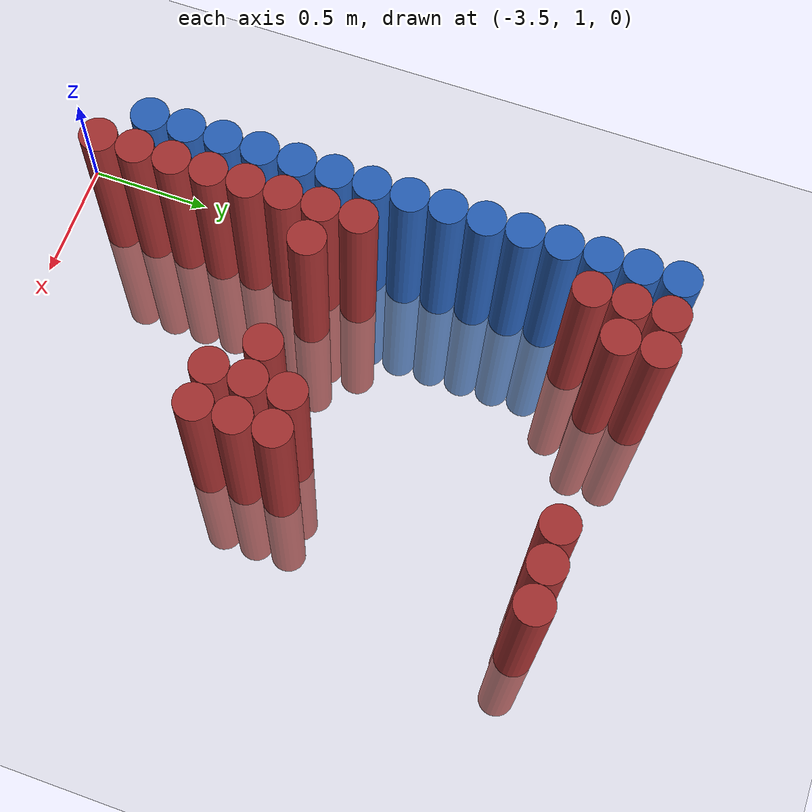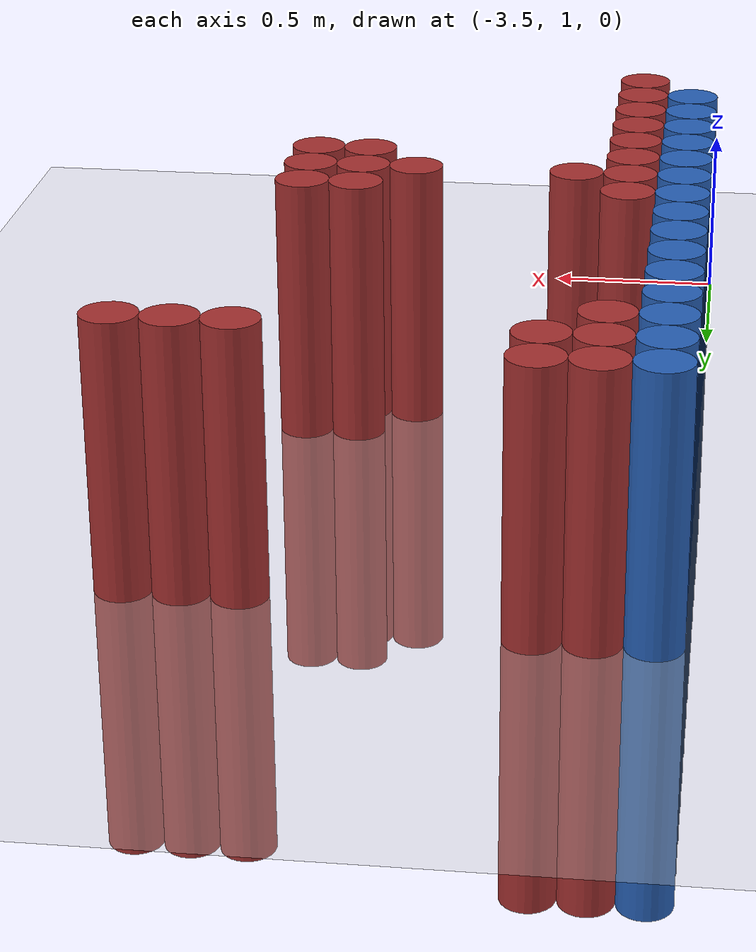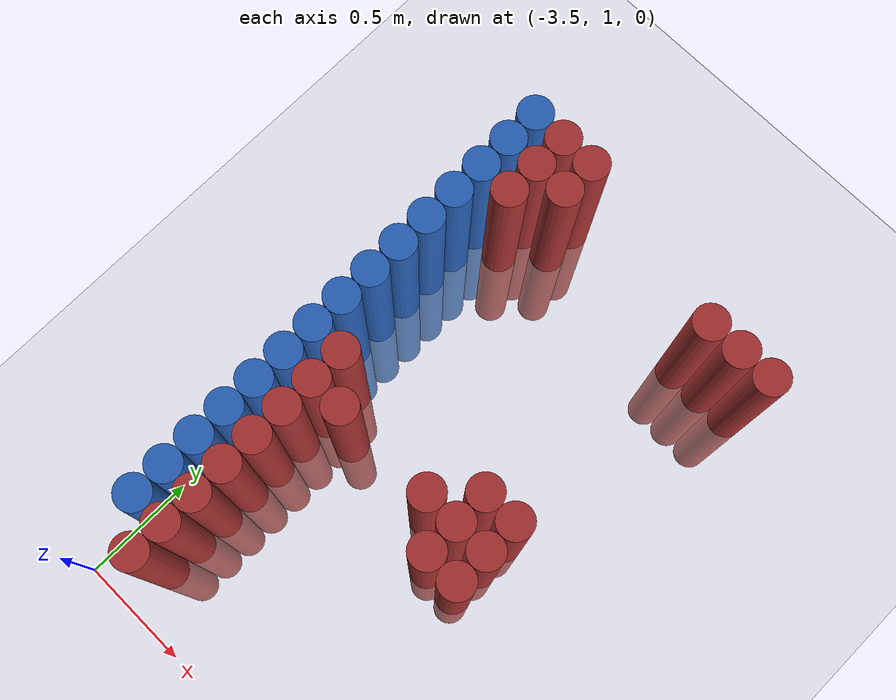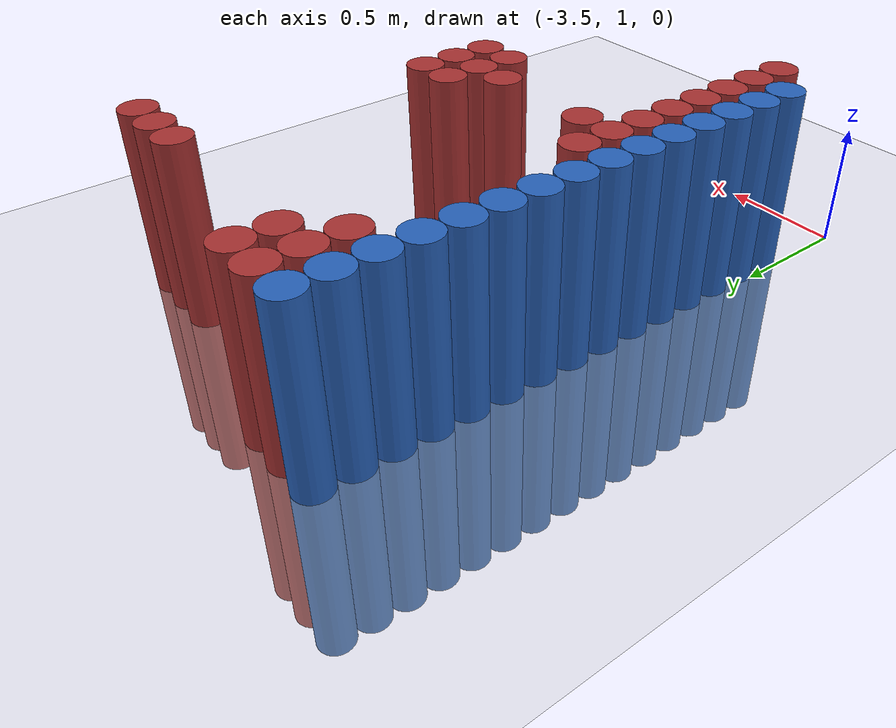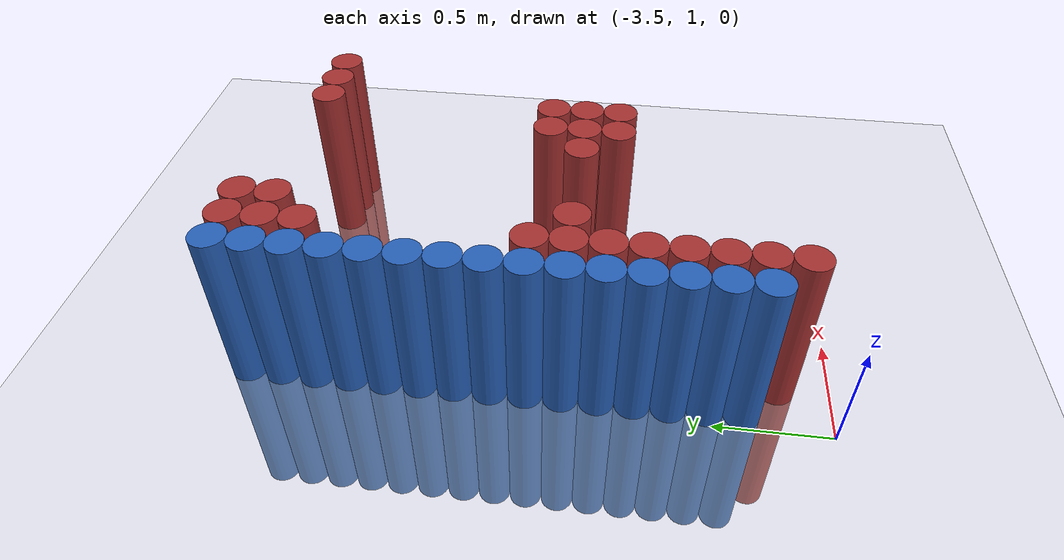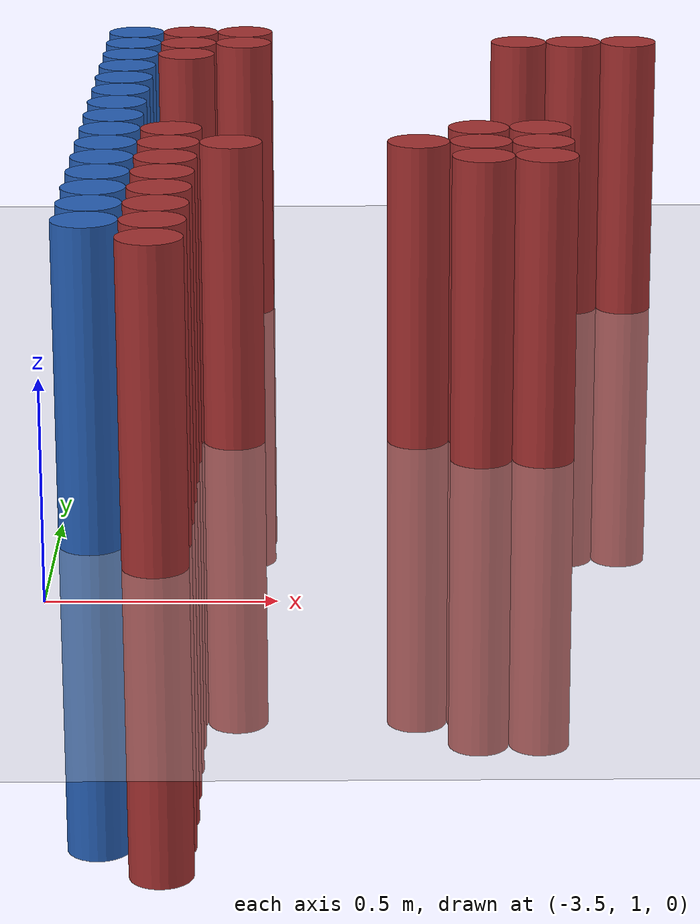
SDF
<sdf version="1.6">
 <world name="default">
  <model name="ground_plane">
   <static>1</static>
   <link name="link">
    <collision name="collision">
     <geometry><plane><normal>0 0 1</normal><size>100 100</size></plane></geometry>
     <surface><friction><ode><mu>100</mu><mu2>50</mu2></ode></friction></surface>
    </collision>
    <visual name="visual">
     <cast_shadows>0</cast_shadows>
     <geometry><plane><normal>0 0 1</normal><size>100 100</size></plane></geometry>
     <material>
      <script><uri>file://media/materials/scripts/gazebo.material</uri><name>Gazebo/Grey</name></script>
     </material>
    </visual>
   </link>
  </model>
  <model name="unit_cylinder_133">
   <static>1</static>
   <pose>-3.425000 1.375000 0.000000 0.000000 0.000000 0.000000</pose>
   <link name="link">
    <inertial>
     <mass>1</mass>
     <inertia><ixx>0.145833</ixx><ixy>0</ixy><ixz>0</ixz><iyy>0.145833</iyy><iyz>0</iyz><izz>0.125</izz></inertia>
    </inertial>
    <collision name="collision">
     <geometry><cylinder><radius>0.075000</radius><length>1.5</length></cylinder></geometry>
    </collision>
    <visual name="visual">
     <geometry><cylinder><radius>0.075000</radius><length>1.5</length></cylinder></geometry>
     <material>
      <ambient>0.152000 0.379000 0.720000 1</ambient>
      <diffuse>0.152000 0.379000 0.720000 1</diffuse>
     </material>
     <material>
      <script><name>Gazebo/Grey</name><uri>file://media/materials/scripts/gazebo.material</uri></script>
     </material>
    </visual>
   </link>
  </model>
  <model name="unit_cylinder_135">
   <static>1</static>
   <pose>-3.425000 1.525000 0.000000 0.000000 0.000000 0.000000</pose>
   <link name="link">
    <inertial>
     <mass>1</mass>
     <inertia><ixx>0.145833</ixx><ixy>0</ixy><ixz>0</ixz><iyy>0.145833</iyy><iyz>0</iyz><izz>0.125</izz></inertia>
    </inertial>
    <collision name="collision">
     <geometry><cylinder><radius>0.075000</radius><length>1.5</length></cylinder></geometry>
    </collision>
    <visual name="visual">
     <geometry><cylinder><radius>0.075000</radius><length>1.5</length></cylinder></geometry>
     <material>
      <ambient>0.152000 0.379000 0.720000 1</ambient>
      <diffuse>0.152000 0.379000 0.720000 1</diffuse>
     </material>
     <material>
      <script><name>Gazebo/Grey</name><uri>file://media/materials/scripts/gazebo.material</uri></script>
     </material>
    </visual>
   </link>
  </model>
  <model name="unit_cylinder_137">
   <static>1</static>
   <pose>-3.425000 1.675000 0.000000 0.000000 0.000000 0.000000</pose>
   <link name="link">
    <inertial>
     <mass>1</mass>
     <inertia><ixx>0.145833</ixx><ixy>0</ixy><ixz>0</ixz><iyy>0.145833</iyy><iyz>0</iyz><izz>0.125</izz></inertia>
    </inertial>
    <collision name="collision">
     <geometry><cylinder><radius>0.075000</radius><length>1.5</length></cylinder></geometry>
    </collision>
    <visual name="visual">
     <geometry><cylinder><radius>0.075000</radius><length>1.5</length></cylinder></geometry>
     <material>
      <ambient>0.152000 0.379000 0.720000 1</ambient>
      <diffuse>0.152000 0.379000 0.720000 1</diffuse>
     </material>
     <material>
      <script><name>Gazebo/Grey</name><uri>file://media/materials/scripts/gazebo.material</uri></script>
     </material>
    </visual>
   </link>
  </model>
  <model name="unit_cylinder_139">
   <static>1</static>
   <pose>-3.425000 1.825000 0.000000 0.000000 0.000000 0.000000</pose>
   <link name="link">
    <inertial>
     <mass>1</mass>
     <inertia><ixx>0.145833</ixx><ixy>0</ixy><ixz>0</ixz><iyy>0.145833</iyy><iyz>0</iyz><izz>0.125</izz></inertia>
    </inertial>
    <collision name="collision">
     <geometry><cylinder><radius>0.075000</radius><length>1.5</length></cylinder></geometry>
    </collision>
    <visual name="visual">
     <geometry><cylinder><radius>0.075000</radius><length>1.5</length></cylinder></geometry>
     <material>
      <ambient>0.152000 0.379000 0.720000 1</ambient>
      <diffuse>0.152000 0.379000 0.720000 1</diffuse>
     </material>
     <material>
      <script><name>Gazebo/Grey</name><uri>file://media/materials/scripts/gazebo.material</uri></script>
     </material>
    </visual>
   </link>
  </model>
  <model name="unit_cylinder_141">
   <static>1</static>
   <pose>-3.425000 1.975000 0.000000 0.000000 0.000000 0.000000</pose>
   <link name="link">
    <inertial>
     <mass>1</mass>
     <inertia><ixx>0.145833</ixx><ixy>0</ixy><ixz>0</ixz><iyy>0.145833</iyy><iyz>0</iyz><izz>0.125</izz></inertia>
    </inertial>
    <collision name="collision">
     <geometry><cylinder><radius>0.075000</radius><length>1.5</length></cylinder></geometry>
    </collision>
    <visual name="visual">
     <geometry><cylinder><radius>0.075000</radius><length>1.5</length></cylinder></geometry>
     <material>
      <ambient>0.152000 0.379000 0.720000 1</ambient>
      <diffuse>0.152000 0.379000 0.720000 1</diffuse>
     </material>
     <material>
      <script><name>Gazebo/Grey</name><uri>file://media/materials/scripts/gazebo.material</uri></script>
     </material>
    </visual>
   </link>
  </model>
  <model name="unit_cylinder_143">
   <static>1</static>
   <pose>-3.425000 2.125000 0.000000 0.000000 0.000000 0.000000</pose>
   <link name="link">
    <inertial>
     <mass>1</mass>
     <inertia><ixx>0.145833</ixx><ixy>0</ixy><ixz>0</ixz><iyy>0.145833</iyy><iyz>0</iyz><izz>0.125</izz></inertia>
    </inertial>
    <collision name="collision">
     <geometry><cylinder><radius>0.075000</radius><length>1.5</length></cylinder></geometry>
    </collision>
    <visual name="visual">
     <geometry><cylinder><radius>0.075000</radius><length>1.5</length></cylinder></geometry>
     <material>
      <ambient>0.152000 0.379000 0.720000 1</ambient>
      <diffuse>0.152000 0.379000 0.720000 1</diffuse>
     </material>
     <material>
      <script><name>Gazebo/Grey</name><uri>file://media/materials/scripts/gazebo.material</uri></script>
     </material>
    </visual>
   </link>
  </model>
  <model name="unit_cylinder_145">
   <static>1</static>
   <pose>-3.425000 2.275000 0.000000 0.000000 0.000000 0.000000</pose>
   <link name="link">
    <inertial>
     <mass>1</mass>
     <inertia><ixx>0.145833</ixx><ixy>0</ixy><ixz>0</ixz><iyy>0.145833</iyy><iyz>0</iyz><izz>0.125</izz></inertia>
    </inertial>
    <collision name="collision">
     <geometry><cylinder><radius>0.075000</radius><length>1.5</length></cylinder></geometry>
    </collision>
    <visual name="visual">
     <geometry><cylinder><radius>0.075000</radius><length>1.5</length></cylinder></geometry>
     <material>
      <ambient>0.152000 0.379000 0.720000 1</ambient>
      <diffuse>0.152000 0.379000 0.720000 1</diffuse>
     </material>
     <material>
      <script><name>Gazebo/Grey</name><uri>file://media/materials/scripts/gazebo.material</uri></script>
     </material>
    </visual>
   </link>
  </model>
  <model name="unit_cylinder_147">
   <static>1</static>
   <pose>-3.425000 2.425000 0.000000 0.000000 0.000000 0.000000</pose>
   <link name="link">
    <inertial>
     <mass>1</mass>
     <inertia><ixx>0.145833</ixx><ixy>0</ixy><ixz>0</ixz><iyy>0.145833</iyy><iyz>0</iyz><izz>0.125</izz></inertia>
    </inertial>
    <collision name="collision">
     <geometry><cylinder><radius>0.075000</radius><length>1.5</length></cylinder></geometry>
    </collision>
    <visual name="visual">
     <geometry><cylinder><radius>0.075000</radius><length>1.5</length></cylinder></geometry>
     <material>
      <ambient>0.152000 0.379000 0.720000 1</ambient>
      <diffuse>0.152000 0.379000 0.720000 1</diffuse>
     </material>
     <material>
      <script><name>Gazebo/Grey</name><uri>file://media/materials/scripts/gazebo.material</uri></script>
     </material>
    </visual>
   </link>
  </model>
  <model name="unit_cylinder_149">
   <static>1</static>
   <pose>-3.425000 2.575000 0.000000 0.000000 0.000000 0.000000</pose>
   <link name="link">
    <inertial>
     <mass>1</mass>
     <inertia><ixx>0.145833</ixx><ixy>0</ixy><ixz>0</ixz><iyy>0.145833</iyy><iyz>0</iyz><izz>0.125</izz></inertia>
    </inertial>
    <collision name="collision">
     <geometry><cylinder><radius>0.075000</radius><length>1.5</length></cylinder></geometry>
    </collision>
    <visual name="visual">
     <geometry><cylinder><radius>0.075000</radius><length>1.5</length></cylinder></geometry>
     <material>
      <ambient>0.152000 0.379000 0.720000 1</ambient>
      <diffuse>0.152000 0.379000 0.720000 1</diffuse>
     </material>
     <material>
      <script><name>Gazebo/Grey</name><uri>file://media/materials/scripts/gazebo.material</uri></script>
     </material>
    </visual>
   </link>
  </model>
  <model name="unit_cylinder_151">
   <static>1</static>
   <pose>-3.425000 2.725000 0.000000 0.000000 0.000000 0.000000</pose>
   <link name="link">
    <inertial>
     <mass>1</mass>
     <inertia><ixx>0.145833</ixx><ixy>0</ixy><ixz>0</ixz><iyy>0.145833</iyy><iyz>0</iyz><izz>0.125</izz></inertia>
    </inertial>
    <collision name="collision">
     <geometry><cylinder><radius>0.075000</radius><length>1.5</length></cylinder></geometry>
    </collision>
    <visual name="visual">
     <geometry><cylinder><radius>0.075000</radius><length>1.5</length></cylinder></geometry>
     <material>
      <ambient>0.152000 0.379000 0.720000 1</ambient>
      <diffuse>0.152000 0.379000 0.720000 1</diffuse>
     </material>
     <material>
      <script><name>Gazebo/Grey</name><uri>file://media/materials/scripts/gazebo.material</uri></script>
     </material>
    </visual>
   </link>
  </model>
  <model name="unit_cylinder_153">
   <static>1</static>
   <pose>-3.425000 2.875000 0.000000 0.000000 0.000000 0.000000</pose>
   <link name="link">
    <inertial>
     <mass>1</mass>
     <inertia><ixx>0.145833</ixx><ixy>0</ixy><ixz>0</ixz><iyy>0.145833</iyy><iyz>0</iyz><izz>0.125</izz></inertia>
    </inertial>
    <collision name="collision">
     <geometry><cylinder><radius>0.075000</radius><length>1.5</length></cylinder></geometry>
    </collision>
    <visual name="visual">
     <geometry><cylinder><radius>0.075000</radius><length>1.5</length></cylinder></geometry>
     <material>
      <ambient>0.152000 0.379000 0.720000 1</ambient>
      <diffuse>0.152000 0.379000 0.720000 1</diffuse>
     </material>
     <material>
      <script><name>Gazebo/Grey</name><uri>file://media/materials/scripts/gazebo.material</uri></script>
     </material>
    </visual>
   </link>
  </model>
  <model name="unit_cylinder_155">
   <static>1</static>
   <pose>-3.425000 3.025000 0.000000 0.000000 0.000000 0.000000</pose>
   <link name="link">
    <inertial>
     <mass>1</mass>
     <inertia><ixx>0.145833</ixx><ixy>0</ixy><ixz>0</ixz><iyy>0.145833</iyy><iyz>0</iyz><izz>0.125</izz></inertia>
    </inertial>
    <collision name="collision">
     <geometry><cylinder><radius>0.075000</radius><length>1.5</length></cylinder></geometry>
    </collision>
    <visual name="visual">
     <geometry><cylinder><radius>0.075000</radius><length>1.5</length></cylinder></geometry>
     <material>
      <ambient>0.152000 0.379000 0.720000 1</ambient>
      <diffuse>0.152000 0.379000 0.720000 1</diffuse>
     </material>
     <material>
      <script><name>Gazebo/Grey</name><uri>file://media/materials/scripts/gazebo.material</uri></script>
     </material>
    </visual>
   </link>
  </model>
  <model name="unit_cylinder_157">
   <static>1</static>
   <pose>-3.425000 3.175000 0.000000 0.000000 0.000000 0.000000</pose>
   <link name="link">
    <inertial>
     <mass>1</mass>
     <inertia><ixx>0.145833</ixx><ixy>0</ixy><ixz>0</ixz><iyy>0.145833</iyy><iyz>0</iyz><izz>0.125</izz></inertia>
    </inertial>
    <collision name="collision">
     <geometry><cylinder><radius>0.075000</radius><length>1.5</length></cylinder></geometry>
    </collision>
    <visual name="visual">
     <geometry><cylinder><radius>0.075000</radius><length>1.5</length></cylinder></geometry>
     <material>
      <ambient>0.152000 0.379000 0.720000 1</ambient>
      <diffuse>0.152000 0.379000 0.720000 1</diffuse>
     </material>
     <material>
      <script><name>Gazebo/Grey</name><uri>file://media/materials/scripts/gazebo.material</uri></script>
     </material>
    </visual>
   </link>
  </model>
  <model name="unit_cylinder_159">
   <static>1</static>
   <pose>-3.425000 3.325000 0.000000 0.000000 0.000000 0.000000</pose>
   <link name="link">
    <inertial>
     <mass>1</mass>
     <inertia><ixx>0.145833</ixx><ixy>0</ixy><ixz>0</ixz><iyy>0.145833</iyy><iyz>0</iyz><izz>0.125</izz></inertia>
    </inertial>
    <collision name="collision">
     <geometry><cylinder><radius>0.075000</radius><length>1.5</length></cylinder></geometry>
    </collision>
    <visual name="visual">
     <geometry><cylinder><radius>0.075000</radius><length>1.5</length></cylinder></geometry>
     <material>
      <ambient>0.152000 0.379000 0.720000 1</ambient>
      <diffuse>0.152000 0.379000 0.720000 1</diffuse>
     </material>
     <material>
      <script><name>Gazebo/Grey</name><uri>file://media/materials/scripts/gazebo.material</uri></script>
     </material>
    </visual>
   </link>
  </model>
  <model name="unit_cylinder_161">
   <static>1</static>
   <pose>-3.425000 3.475000 0.000000 0.000000 0.000000 0.000000</pose>
   <link name="link">
    <inertial>
     <mass>1</mass>
     <inertia><ixx>0.145833</ixx><ixy>0</ixy><ixz>0</ixz><iyy>0.145833</iyy><iyz>0</iyz><izz>0.125</izz></inertia>
    </inertial>
    <collision name="collision">
     <geometry><cylinder><radius>0.075000</radius><length>1.5</length></cylinder></geometry>
    </collision>
    <visual name="visual">
     <geometry><cylinder><radius>0.075000</radius><length>1.5</length></cylinder></geometry>
     <material>
      <ambient>0.152000 0.379000 0.720000 1</ambient>
      <diffuse>0.152000 0.379000 0.720000 1</diffuse>
     </material>
     <material>
      <script><name>Gazebo/Grey</name><uri>file://media/materials/scripts/gazebo.material</uri></script>
     </material>
    </visual>
   </link>
  </model>
  <model name="unit_cylinder_230">
   <static>1</static>
   <pose>-3.425000 1.375000 0.000000 0.000000 0.000000 0.000000</pose>
   <link name="link">
    <inertial>
     <mass>1</mass>
     <inertia><ixx>0.145833</ixx><ixy>0</ixy><ixz>0</ixz><iyy>0.145833</iyy><iyz>0</iyz><izz>0.125</izz></inertia>
    </inertial>
    <collision name="collision">
     <geometry><cylinder><radius>0.075000</radius><length>1.5</length></cylinder></geometry>
    </collision>
    <visual name="visual">
     <geometry><cylinder><radius>0.075000</radius><length>1.5</length></cylinder></geometry>
     <material>
      <ambient>0.152000 0.379000 0.720000 1</ambient>
      <diffuse>0.152000 0.379000 0.720000 1</diffuse>
     </material>
     <material>
      <script><name>Gazebo/Grey</name><uri>file://media/materials/scripts/gazebo.material</uri></script>
     </material>
    </visual>
   </link>
  </model>
  <model name="unit_cylinder_231">
   <static>1</static>
   <pose>-3.425000 1.525000 0.000000 0.000000 0.000000 0.000000</pose>
   <link name="link">
    <inertial>
     <mass>1</mass>
     <inertia><ixx>0.145833</ixx><ixy>0</ixy><ixz>0</ixz><iyy>0.145833</iyy><iyz>0</iyz><izz>0.125</izz></inertia>
    </inertial>
    <collision name="collision">
     <geometry><cylinder><radius>0.075000</radius><length>1.5</length></cylinder></geometry>
    </collision>
    <visual name="visual">
     <geometry><cylinder><radius>0.075000</radius><length>1.5</length></cylinder></geometry>
     <material>
      <ambient>0.152000 0.379000 0.720000 1</ambient>
      <diffuse>0.152000 0.379000 0.720000 1</diffuse>
     </material>
     <material>
      <script><name>Gazebo/Grey</name><uri>file://media/materials/scripts/gazebo.material</uri></script>
     </material>
    </visual>
   </link>
  </model>
  <model name="unit_cylinder_232">
   <static>1</static>
   <pose>-3.425000 1.675000 0.000000 0.000000 0.000000 0.000000</pose>
   <link name="link">
    <inertial>
     <mass>1</mass>
     <inertia><ixx>0.145833</ixx><ixy>0</ixy><ixz>0</ixz><iyy>0.145833</iyy><iyz>0</iyz><izz>0.125</izz></inertia>
    </inertial>
    <collision name="collision">
     <geometry><cylinder><radius>0.075000</radius><length>1.5</length></cylinder></geometry>
    </collision>
    <visual name="visual">
     <geometry><cylinder><radius>0.075000</radius><length>1.5</length></cylinder></geometry>
     <material>
      <ambient>0.152000 0.379000 0.720000 1</ambient>
      <diffuse>0.152000 0.379000 0.720000 1</diffuse>
     </material>
     <material>
      <script><name>Gazebo/Grey</name><uri>file://media/materials/scripts/gazebo.material</uri></script>
     </material>
    </visual>
   </link>
  </model>
  <model name="unit_cylinder_233">
   <static>1</static>
   <pose>-3.425000 1.825000 0.000000 0.000000 0.000000 0.000000</pose>
   <link name="link">
    <inertial>
     <mass>1</mass>
     <inertia><ixx>0.145833</ixx><ixy>0</ixy><ixz>0</ixz><iyy>0.145833</iyy><iyz>0</iyz><izz>0.125</izz></inertia>
    </inertial>
    <collision name="collision">
     <geometry><cylinder><radius>0.075000</radius><length>1.5</length></cylinder></geometry>
    </collision>
    <visual name="visual">
     <geometry><cylinder><radius>0.075000</radius><length>1.5</length></cylinder></geometry>
     <material>
      <ambient>0.152000 0.379000 0.720000 1</ambient>
      <diffuse>0.152000 0.379000 0.720000 1</diffuse>
     </material>
     <material>
      <script><name>Gazebo/Grey</name><uri>file://media/materials/scripts/gazebo.material</uri></script>
     </material>
    </visual>
   </link>
  </model>
  <model name="unit_cylinder_234">
   <static>1</static>
   <pose>-3.425000 1.975000 0.000000 0.000000 0.000000 0.000000</pose>
   <link name="link">
    <inertial>
     <mass>1</mass>
     <inertia><ixx>0.145833</ixx><ixy>0</ixy><ixz>0</ixz><iyy>0.145833</iyy><iyz>0</iyz><izz>0.125</izz></inertia>
    </inertial>
    <collision name="collision">
     <geometry><cylinder><radius>0.075000</radius><length>1.5</length></cylinder></geometry>
    </collision>
    <visual name="visual">
     <geometry><cylinder><radius>0.075000</radius><length>1.5</length></cylinder></geometry>
     <material>
      <ambient>0.152000 0.379000 0.720000 1</ambient>
      <diffuse>0.152000 0.379000 0.720000 1</diffuse>
     </material>
     <material>
      <script><name>Gazebo/Grey</name><uri>file://media/materials/scripts/gazebo.material</uri></script>
     </material>
    </visual>
   </link>
  </model>
  <model name="unit_cylinder_235">
   <static>1</static>
   <pose>-3.425000 2.125000 0.000000 0.000000 0.000000 0.000000</pose>
   <link name="link">
    <inertial>
     <mass>1</mass>
     <inertia><ixx>0.145833</ixx><ixy>0</ixy><ixz>0</ixz><iyy>0.145833</iyy><iyz>0</iyz><izz>0.125</izz></inertia>
    </inertial>
    <collision name="collision">
     <geometry><cylinder><radius>0.075000</radius><length>1.5</length></cylinder></geometry>
    </collision>
    <visual name="visual">
     <geometry><cylinder><radius>0.075000</radius><length>1.5</length></cylinder></geometry>
     <material>
      <ambient>0.152000 0.379000 0.720000 1</ambient>
      <diffuse>0.152000 0.379000 0.720000 1</diffuse>
     </material>
     <material>
      <script><name>Gazebo/Grey</name><uri>file://media/materials/scripts/gazebo.material</uri></script>
     </material>
    </visual>
   </link>
  </model>
  <model name="unit_cylinder_236">
   <static>1</static>
   <pose>-3.425000 2.275000 0.000000 0.000000 0.000000 0.000000</pose>
   <link name="link">
    <inertial>
     <mass>1</mass>
     <inertia><ixx>0.145833</ixx><ixy>0</ixy><ixz>0</ixz><iyy>0.145833</iyy><iyz>0</iyz><izz>0.125</izz></inertia>
    </inertial>
    <collision name="collision">
     <geometry><cylinder><radius>0.075000</radius><length>1.5</length></cylinder></geometry>
    </collision>
    <visual name="visual">
     <geometry><cylinder><radius>0.075000</radius><length>1.5</length></cylinder></geometry>
     <material>
      <ambient>0.152000 0.379000 0.720000 1</ambient>
      <diffuse>0.152000 0.379000 0.720000 1</diffuse>
     </material>
     <material>
      <script><name>Gazebo/Grey</name><uri>file://media/materials/scripts/gazebo.material</uri></script>
     </material>
    </visual>
   </link>
  </model>
  <model name="unit_cylinder_237">
   <static>1</static>
   <pose>-3.425000 2.425000 0.000000 0.000000 0.000000 0.000000</pose>
   <link name="link">
    <inertial>
     <mass>1</mass>
     <inertia><ixx>0.145833</ixx><ixy>0</ixy><ixz>0</ixz><iyy>0.145833</iyy><iyz>0</iyz><izz>0.125</izz></inertia>
    </inertial>
    <collision name="collision">
     <geometry><cylinder><radius>0.075000</radius><length>1.5</length></cylinder></geometry>
    </collision>
    <visual name="visual">
     <geometry><cylinder><radius>0.075000</radius><length>1.5</length></cylinder></geometry>
     <material>
      <ambient>0.152000 0.379000 0.720000 1</ambient>
      <diffuse>0.152000 0.379000 0.720000 1</diffuse>
     </material>
     <material>
      <script><name>Gazebo/Grey</name><uri>file://media/materials/scripts/gazebo.material</uri></script>
     </material>
    </visual>
   </link>
  </model>
  <model name="unit_cylinder_238">
   <static>1</static>
   <pose>-3.425000 2.575000 0.000000 0.000000 0.000000 0.000000</pose>
   <link name="link">
    <inertial>
     <mass>1</mass>
     <inertia><ixx>0.145833</ixx><ixy>0</ixy><ixz>0</ixz><iyy>0.145833</iyy><iyz>0</iyz><izz>0.125</izz></inertia>
    </inertial>
    <collision name="collision">
     <geometry><cylinder><radius>0.075000</radius><length>1.5</length></cylinder></geometry>
    </collision>
    <visual name="visual">
     <geometry><cylinder><radius>0.075000</radius><length>1.5</length></cylinder></geometry>
     <material>
      <ambient>0.152000 0.379000 0.720000 1</ambient>
      <diffuse>0.152000 0.379000 0.720000 1</diffuse>
     </material>
     <material>
      <script><name>Gazebo/Grey</name><uri>file://media/materials/scripts/gazebo.material</uri></script>
     </material>
    </visual>
   </link>
  </model>
  <model name="unit_cylinder_239">
   <static>1</static>
   <pose>-3.425000 2.725000 0.000000 0.000000 0.000000 0.000000</pose>
   <link name="link">
    <inertial>
     <mass>1</mass>
     <inertia><ixx>0.145833</ixx><ixy>0</ixy><ixz>0</ixz><iyy>0.145833</iyy><iyz>0</iyz><izz>0.125</izz></inertia>
    </inertial>
    <collision name="collision">
     <geometry><cylinder><radius>0.075000</radius><length>1.5</length></cylinder></geometry>
    </collision>
    <visual name="visual">
     <geometry><cylinder><radius>0.075000</radius><length>1.5</length></cylinder></geometry>
     <material>
      <ambient>0.152000 0.379000 0.720000 1</ambient>
      <diffuse>0.152000 0.379000 0.720000 1</diffuse>
     </material>
     <material>
      <script><name>Gazebo/Grey</name><uri>file://media/materials/scripts/gazebo.material</uri></script>
     </material>
    </visual>
   </link>
  </model>
  <model name="unit_cylinder_240">
   <static>1</static>
   <pose>-3.425000 2.875000 0.000000 0.000000 0.000000 0.000000</pose>
   <link name="link">
    <inertial>
     <mass>1</mass>
     <inertia><ixx>0.145833</ixx><ixy>0</ixy><ixz>0</ixz><iyy>0.145833</iyy><iyz>0</iyz><izz>0.125</izz></inertia>
    </inertial>
    <collision name="collision">
     <geometry><cylinder><radius>0.075000</radius><length>1.5</length></cylinder></geometry>
    </collision>
    <visual name="visual">
     <geometry><cylinder><radius>0.075000</radius><length>1.5</length></cylinder></geometry>
     <material>
      <ambient>0.152000 0.379000 0.720000 1</ambient>
      <diffuse>0.152000 0.379000 0.720000 1</diffuse>
     </material>
     <material>
      <script><name>Gazebo/Grey</name><uri>file://media/materials/scripts/gazebo.material</uri></script>
     </material>
    </visual>
   </link>
  </model>
  <model name="unit_cylinder_241">
   <static>1</static>
   <pose>-3.425000 3.025000 0.000000 0.000000 0.000000 0.000000</pose>
   <link name="link">
    <inertial>
     <mass>1</mass>
     <inertia><ixx>0.145833</ixx><ixy>0</ixy><ixz>0</ixz><iyy>0.145833</iyy><iyz>0</iyz><izz>0.125</izz></inertia>
    </inertial>
    <collision name="collision">
     <geometry><cylinder><radius>0.075000</radius><length>1.5</length></cylinder></geometry>
    </collision>
    <visual name="visual">
     <geometry><cylinder><radius>0.075000</radius><length>1.5</length></cylinder></geometry>
     <material>
      <ambient>0.152000 0.379000 0.720000 1</ambient>
      <diffuse>0.152000 0.379000 0.720000 1</diffuse>
     </material>
     <material>
      <script><name>Gazebo/Grey</name><uri>file://media/materials/scripts/gazebo.material</uri></script>
     </material>
    </visual>
   </link>
  </model>
  <model name="unit_cylinder_242">
   <static>1</static>
   <pose>-3.425000 3.175000 0.000000 0.000000 0.000000 0.000000</pose>
   <link name="link">
    <inertial>
     <mass>1</mass>
     <inertia><ixx>0.145833</ixx><ixy>0</ixy><ixz>0</ixz><iyy>0.145833</iyy><iyz>0</iyz><izz>0.125</izz></inertia>
    </inertial>
    <collision name="collision">
     <geometry><cylinder><radius>0.075000</radius><length>1.5</length></cylinder></geometry>
    </collision>
    <visual name="visual">
     <geometry><cylinder><radius>0.075000</radius><length>1.5</length></cylinder></geometry>
     <material>
      <ambient>0.152000 0.379000 0.720000 1</ambient>
      <diffuse>0.152000 0.379000 0.720000 1</diffuse>
     </material>
     <material>
      <script><name>Gazebo/Grey</name><uri>file://media/materials/scripts/gazebo.material</uri></script>
     </material>
    </visual>
   </link>
  </model>
  <model name="unit_cylinder_243">
   <static>1</static>
   <pose>-3.425000 3.325000 0.000000 0.000000 0.000000 0.000000</pose>
   <link name="link">
    <inertial>
     <mass>1</mass>
     <inertia><ixx>0.145833</ixx><ixy>0</ixy><ixz>0</ixz><iyy>0.145833</iyy><iyz>0</iyz><izz>0.125</izz></inertia>
    </inertial>
    <collision name="collision">
     <geometry><cylinder><radius>0.075000</radius><length>1.5</length></cylinder></geometry>
    </collision>
    <visual name="visual">
     <geometry><cylinder><radius>0.075000</radius><length>1.5</length></cylinder></geometry>
     <material>
      <ambient>0.152000 0.379000 0.720000 1</ambient>
      <diffuse>0.152000 0.379000 0.720000 1</diffuse>
     </material>
     <material>
      <script><name>Gazebo/Grey</name><uri>file://media/materials/scripts/gazebo.material</uri></script>
     </material>
    </visual>
   </link>
  </model>
  <model name="unit_cylinder_244">
   <static>1</static>
   <pose>-3.425000 3.475000 0.000000 0.000000 0.000000 0.000000</pose>
   <link name="link">
    <inertial>
     <mass>1</mass>
     <inertia><ixx>0.145833</ixx><ixy>0</ixy><ixz>0</ixz><iyy>0.145833</iyy><iyz>0</iyz><izz>0.125</izz></inertia>
    </inertial>
    <collision name="collision">
     <geometry><cylinder><radius>0.075000</radius><length>1.5</length></cylinder></geometry>
    </collision>
    <visual name="visual">
     <geometry><cylinder><radius>0.075000</radius><length>1.5</length></cylinder></geometry>
     <material>
      <ambient>0.152000 0.379000 0.720000 1</ambient>
      <diffuse>0.152000 0.379000 0.720000 1</diffuse>
     </material>
     <material>
      <script><name>Gazebo/Grey</name><uri>file://media/materials/scripts/gazebo.material</uri></script>
     </material>
    </visual>
   </link>
  </model>
  <model name="unit_cylinder_262">
   <static>1</static>
   <pose>-3.275000 1.225000 0.000000 0.000000 0.000000 0.000000</pose>
   <link name="link">
    <inertial>
     <mass>1</mass>
     <inertia><ixx>0.145833</ixx><ixy>0</ixy><ixz>0</ixz><iyy>0.145833</iyy><iyz>0</iyz><izz>0.125</izz></inertia>
    </inertial>
    <collision name="collision">
     <geometry><cylinder><radius>0.075000</radius><length>1.5</length></cylinder></geometry>
    </collision>
    <visual name="visual">
     <geometry><cylinder><radius>0.075000</radius><length>1.5</length></cylinder></geometry>
     <material>
      <ambient>0.648000 0.192000 0.192000 1</ambient>
      <diffuse>0.648000 0.192000 0.192000 1</diffuse>
     </material>
     <material>
      <script><name>Gazebo/Grey</name><uri>file://media/materials/scripts/gazebo.material</uri></script>
     </material>
    </visual>
   </link>
  </model>
  <model name="unit_cylinder_263">
   <static>1</static>
   <pose>-3.275000 1.375000 0.000000 0.000000 0.000000 0.000000</pose>
   <link name="link">
    <inertial>
     <mass>1</mass>
     <inertia><ixx>0.145833</ixx><ixy>0</ixy><ixz>0</ixz><iyy>0.145833</iyy><iyz>0</iyz><izz>0.125</izz></inertia>
    </inertial>
    <collision name="collision">
     <geometry><cylinder><radius>0.075000</radius><length>1.5</length></cylinder></geometry>
    </collision>
    <visual name="visual">
     <geometry><cylinder><radius>0.075000</radius><length>1.5</length></cylinder></geometry>
     <material>
      <ambient>0.648000 0.192000 0.192000 1</ambient>
      <diffuse>0.648000 0.192000 0.192000 1</diffuse>
     </material>
     <material>
      <script><name>Gazebo/Grey</name><uri>file://media/materials/scripts/gazebo.material</uri></script>
     </material>
    </visual>
   </link>
  </model>
  <model name="unit_cylinder_264">
   <static>1</static>
   <pose>-3.275000 1.525000 0.000000 0.000000 0.000000 0.000000</pose>
   <link name="link">
    <inertial>
     <mass>1</mass>
     <inertia><ixx>0.145833</ixx><ixy>0</ixy><ixz>0</ixz><iyy>0.145833</iyy><iyz>0</iyz><izz>0.125</izz></inertia>
    </inertial>
    <collision name="collision">
     <geometry><cylinder><radius>0.075000</radius><length>1.5</length></cylinder></geometry>
    </collision>
    <visual name="visual">
     <geometry><cylinder><radius>0.075000</radius><length>1.5</length></cylinder></geometry>
     <material>
      <ambient>0.648000 0.192000 0.192000 1</ambient>
      <diffuse>0.648000 0.192000 0.192000 1</diffuse>
     </material>
     <material>
      <script><name>Gazebo/Grey</name><uri>file://media/materials/scripts/gazebo.material</uri></script>
     </material>
    </visual>
   </link>
  </model>
  <model name="unit_cylinder_265">
   <static>1</static>
   <pose>-3.275000 1.675000 0.000000 0.000000 0.000000 0.000000</pose>
   <link name="link">
    <inertial>
     <mass>1</mass>
     <inertia><ixx>0.145833</ixx><ixy>0</ixy><ixz>0</ixz><iyy>0.145833</iyy><iyz>0</iyz><izz>0.125</izz></inertia>
    </inertial>
    <collision name="collision">
     <geometry><cylinder><radius>0.075000</radius><length>1.5</length></cylinder></geometry>
    </collision>
    <visual name="visual">
     <geometry><cylinder><radius>0.075000</radius><length>1.5</length></cylinder></geometry>
     <material>
      <ambient>0.648000 0.192000 0.192000 1</ambient>
      <diffuse>0.648000 0.192000 0.192000 1</diffuse>
     </material>
     <material>
      <script><name>Gazebo/Grey</name><uri>file://media/materials/scripts/gazebo.material</uri></script>
     </material>
    </visual>
   </link>
  </model>
  <model name="unit_cylinder_266">
   <static>1</static>
   <pose>-3.275000 1.825000 0.000000 0.000000 0.000000 0.000000</pose>
   <link name="link">
    <inertial>
     <mass>1</mass>
     <inertia><ixx>0.145833</ixx><ixy>0</ixy><ixz>0</ixz><iyy>0.145833</iyy><iyz>0</iyz><izz>0.125</izz></inertia>
    </inertial>
    <collision name="collision">
     <geometry><cylinder><radius>0.075000</radius><length>1.5</length></cylinder></geometry>
    </collision>
    <visual name="visual">
     <geometry><cylinder><radius>0.075000</radius><length>1.5</length></cylinder></geometry>
     <material>
      <ambient>0.648000 0.192000 0.192000 1</ambient>
      <diffuse>0.648000 0.192000 0.192000 1</diffuse>
     </material>
     <material>
      <script><name>Gazebo/Grey</name><uri>file://media/materials/scripts/gazebo.material</uri></script>
     </material>
    </visual>
   </link>
  </model>
  <model name="unit_cylinder_267">
   <static>1</static>
   <pose>-3.275000 1.975000 0.000000 0.000000 0.000000 0.000000</pose>
   <link name="link">
    <inertial>
     <mass>1</mass>
     <inertia><ixx>0.145833</ixx><ixy>0</ixy><ixz>0</ixz><iyy>0.145833</iyy><iyz>0</iyz><izz>0.125</izz></inertia>
    </inertial>
    <collision name="collision">
     <geometry><cylinder><radius>0.075000</radius><length>1.5</length></cylinder></geometry>
    </collision>
    <visual name="visual">
     <geometry><cylinder><radius>0.075000</radius><length>1.5</length></cylinder></geometry>
     <material>
      <ambient>0.648000 0.192000 0.192000 1</ambient>
      <diffuse>0.648000 0.192000 0.192000 1</diffuse>
     </material>
     <material>
      <script><name>Gazebo/Grey</name><uri>file://media/materials/scripts/gazebo.material</uri></script>
     </material>
    </visual>
   </link>
  </model>
  <model name="unit_cylinder_268">
   <static>1</static>
   <pose>-3.275000 2.125000 0.000000 0.000000 0.000000 0.000000</pose>
   <link name="link">
    <inertial>
     <mass>1</mass>
     <inertia><ixx>0.145833</ixx><ixy>0</ixy><ixz>0</ixz><iyy>0.145833</iyy><iyz>0</iyz><izz>0.125</izz></inertia>
    </inertial>
    <collision name="collision">
     <geometry><cylinder><radius>0.075000</radius><length>1.5</length></cylinder></geometry>
    </collision>
    <visual name="visual">
     <geometry><cylinder><radius>0.075000</radius><length>1.5</length></cylinder></geometry>
     <material>
      <ambient>0.648000 0.192000 0.192000 1</ambient>
      <diffuse>0.648000 0.192000 0.192000 1</diffuse>
     </material>
     <material>
      <script><name>Gazebo/Grey</name><uri>file://media/materials/scripts/gazebo.material</uri></script>
     </material>
    </visual>
   </link>
  </model>
  <model name="unit_cylinder_269">
   <static>1</static>
   <pose>-3.275000 2.275000 0.000000 0.000000 0.000000 0.000000</pose>
   <link name="link">
    <inertial>
     <mass>1</mass>
     <inertia><ixx>0.145833</ixx><ixy>0</ixy><ixz>0</ixz><iyy>0.145833</iyy><iyz>0</iyz><izz>0.125</izz></inertia>
    </inertial>
    <collision name="collision">
     <geometry><cylinder><radius>0.075000</radius><length>1.5</length></cylinder></geometry>
    </collision>
    <visual name="visual">
     <geometry><cylinder><radius>0.075000</radius><length>1.5</length></cylinder></geometry>
     <material>
      <ambient>0.648000 0.192000 0.192000 1</ambient>
      <diffuse>0.648000 0.192000 0.192000 1</diffuse>
     </material>
     <material>
      <script><name>Gazebo/Grey</name><uri>file://media/materials/scripts/gazebo.material</uri></script>
     </material>
    </visual>
   </link>
  </model>
  <model name="unit_cylinder_270">
   <static>1</static>
   <pose>-3.275000 3.175000 0.000000 0.000000 0.000000 0.000000</pose>
   <link name="link">
    <inertial>
     <mass>1</mass>
     <inertia><ixx>0.145833</ixx><ixy>0</ixy><ixz>0</ixz><iyy>0.145833</iyy><iyz>0</iyz><izz>0.125</izz></inertia>
    </inertial>
    <collision name="collision">
     <geometry><cylinder><radius>0.075000</radius><length>1.5</length></cylinder></geometry>
    </collision>
    <visual name="visual">
     <geometry><cylinder><radius>0.075000</radius><length>1.5</length></cylinder></geometry>
     <material>
      <ambient>0.648000 0.192000 0.192000 1</ambient>
      <diffuse>0.648000 0.192000 0.192000 1</diffuse>
     </material>
     <material>
      <script><name>Gazebo/Grey</name><uri>file://media/materials/scripts/gazebo.material</uri></script>
     </material>
    </visual>
   </link>
  </model>
  <model name="unit_cylinder_271">
   <static>1</static>
   <pose>-3.275000 3.325000 0.000000 0.000000 0.000000 0.000000</pose>
   <link name="link">
    <inertial>
     <mass>1</mass>
     <inertia><ixx>0.145833</ixx><ixy>0</ixy><ixz>0</ixz><iyy>0.145833</iyy><iyz>0</iyz><izz>0.125</izz></inertia>
    </inertial>
    <collision name="collision">
     <geometry><cylinder><radius>0.075000</radius><length>1.5</length></cylinder></geometry>
    </collision>
    <visual name="visual">
     <geometry><cylinder><radius>0.075000</radius><length>1.5</length></cylinder></geometry>
     <material>
      <ambient>0.648000 0.192000 0.192000 1</ambient>
      <diffuse>0.648000 0.192000 0.192000 1</diffuse>
     </material>
     <material>
      <script><name>Gazebo/Grey</name><uri>file://media/materials/scripts/gazebo.material</uri></script>
     </material>
    </visual>
   </link>
  </model>
  <model name="unit_cylinder_272">
   <static>1</static>
   <pose>-3.275000 3.475000 0.000000 0.000000 0.000000 0.000000</pose>
   <link name="link">
    <inertial>
     <mass>1</mass>
     <inertia><ixx>0.145833</ixx><ixy>0</ixy><ixz>0</ixz><iyy>0.145833</iyy><iyz>0</iyz><izz>0.125</izz></inertia>
    </inertial>
    <collision name="collision">
     <geometry><cylinder><radius>0.075000</radius><length>1.5</length></cylinder></geometry>
    </collision>
    <visual name="visual">
     <geometry><cylinder><radius>0.075000</radius><length>1.5</length></cylinder></geometry>
     <material>
      <ambient>0.648000 0.192000 0.192000 1</ambient>
      <diffuse>0.648000 0.192000 0.192000 1</diffuse>
     </material>
     <material>
      <script><name>Gazebo/Grey</name><uri>file://media/materials/scripts/gazebo.material</uri></script>
     </material>
    </visual>
   </link>
  </model>
  <model name="unit_cylinder_288">
   <static>1</static>
   <pose>-3.125000 2.125000 0.000000 0.000000 0.000000 0.000000</pose>
   <link name="link">
    <inertial>
     <mass>1</mass>
     <inertia><ixx>0.145833</ixx><ixy>0</ixy><ixz>0</ixz><iyy>0.145833</iyy><iyz>0</iyz><izz>0.125</izz></inertia>
    </inertial>
    <collision name="collision">
     <geometry><cylinder><radius>0.075000</radius><length>1.5</length></cylinder></geometry>
    </collision>
    <visual name="visual">
     <geometry><cylinder><radius>0.075000</radius><length>1.5</length></cylinder></geometry>
     <material>
      <ambient>0.648000 0.192000 0.192000 1</ambient>
      <diffuse>0.648000 0.192000 0.192000 1</diffuse>
     </material>
     <material>
      <script><name>Gazebo/Grey</name><uri>file://media/materials/scripts/gazebo.material</uri></script>
     </material>
    </visual>
   </link>
  </model>
  <model name="unit_cylinder_289">
   <static>1</static>
   <pose>-3.125000 3.325000 0.000000 0.000000 0.000000 0.000000</pose>
   <link name="link">
    <inertial>
     <mass>1</mass>
     <inertia><ixx>0.145833</ixx><ixy>0</ixy><ixz>0</ixz><iyy>0.145833</iyy><iyz>0</iyz><izz>0.125</izz></inertia>
    </inertial>
    <collision name="collision">
     <geometry><cylinder><radius>0.075000</radius><length>1.5</length></cylinder></geometry>
    </collision>
    <visual name="visual">
     <geometry><cylinder><radius>0.075000</radius><length>1.5</length></cylinder></geometry>
     <material>
      <ambient>0.648000 0.192000 0.192000 1</ambient>
      <diffuse>0.648000 0.192000 0.192000 1</diffuse>
     </material>
     <material>
      <script><name>Gazebo/Grey</name><uri>file://media/materials/scripts/gazebo.material</uri></script>
     </material>
    </visual>
   </link>
  </model>
  <model name="unit_cylinder_290">
   <static>1</static>
   <pose>-3.125000 3.475000 0.000000 0.000000 0.000000 0.000000</pose>
   <link name="link">
    <inertial>
     <mass>1</mass>
     <inertia><ixx>0.145833</ixx><ixy>0</ixy><ixz>0</ixz><iyy>0.145833</iyy><iyz>0</iyz><izz>0.125</izz></inertia>
    </inertial>
    <collision name="collision">
     <geometry><cylinder><radius>0.075000</radius><length>1.5</length></cylinder></geometry>
    </collision>
    <visual name="visual">
     <geometry><cylinder><radius>0.075000</radius><length>1.5</length></cylinder></geometry>
     <material>
      <ambient>0.648000 0.192000 0.192000 1</ambient>
      <diffuse>0.648000 0.192000 0.192000 1</diffuse>
     </material>
     <material>
      <script><name>Gazebo/Grey</name><uri>file://media/materials/scripts/gazebo.material</uri></script>
     </material>
    </visual>
   </link>
  </model>
  <model name="unit_cylinder_307">
   <static>1</static>
   <pose>-2.675000 2.125000 0.000000 0.000000 0.000000 0.000000</pose>
   <link name="link">
    <inertial>
     <mass>1</mass>
     <inertia><ixx>0.145833</ixx><ixy>0</ixy><ixz>0</ixz><iyy>0.145833</iyy><iyz>0</iyz><izz>0.125</izz></inertia>
    </inertial>
    <collision name="collision">
     <geometry><cylinder><radius>0.075000</radius><length>1.5</length></cylinder></geometry>
    </collision>
    <visual name="visual">
     <geometry><cylinder><radius>0.075000</radius><length>1.5</length></cylinder></geometry>
     <material>
      <ambient>0.648000 0.192000 0.192000 1</ambient>
      <diffuse>0.648000 0.192000 0.192000 1</diffuse>
     </material>
     <material>
      <script><name>Gazebo/Grey</name><uri>file://media/materials/scripts/gazebo.material</uri></script>
     </material>
    </visual>
   </link>
  </model>
  <model name="unit_cylinder_309">
   <static>1</static>
   <pose>-2.525000 1.975000 0.000000 0.000000 0.000000 0.000000</pose>
   <link name="link">
    <inertial>
     <mass>1</mass>
     <inertia><ixx>0.145833</ixx><ixy>0</ixy><ixz>0</ixz><iyy>0.145833</iyy><iyz>0</iyz><izz>0.125</izz></inertia>
    </inertial>
    <collision name="collision">
     <geometry><cylinder><radius>0.075000</radius><length>1.5</length></cylinder></geometry>
    </collision>
    <visual name="visual">
     <geometry><cylinder><radius>0.075000</radius><length>1.5</length></cylinder></geometry>
     <material>
      <ambient>0.648000 0.192000 0.192000 1</ambient>
      <diffuse>0.648000 0.192000 0.192000 1</diffuse>
     </material>
     <material>
      <script><name>Gazebo/Grey</name><uri>file://media/materials/scripts/gazebo.material</uri></script>
     </material>
    </visual>
   </link>
  </model>
  <model name="unit_cylinder_310">
   <static>1</static>
   <pose>-2.525000 2.125000 0.000000 0.000000 0.000000 0.000000</pose>
   <link name="link">
    <inertial>
     <mass>1</mass>
     <inertia><ixx>0.145833</ixx><ixy>0</ixy><ixz>0</ixz><iyy>0.145833</iyy><iyz>0</iyz><izz>0.125</izz></inertia>
    </inertial>
    <collision name="collision">
     <geometry><cylinder><radius>0.075000</radius><length>1.5</length></cylinder></geometry>
    </collision>
    <visual name="visual">
     <geometry><cylinder><radius>0.075000</radius><length>1.5</length></cylinder></geometry>
     <material>
      <ambient>0.648000 0.192000 0.192000 1</ambient>
      <diffuse>0.648000 0.192000 0.192000 1</diffuse>
     </material>
     <material>
      <script><name>Gazebo/Grey</name><uri>file://media/materials/scripts/gazebo.material</uri></script>
     </material>
    </visual>
   </link>
  </model>
  <model name="unit_cylinder_311">
   <static>1</static>
   <pose>-2.525000 2.275000 0.000000 0.000000 0.000000 0.000000</pose>
   <link name="link">
    <inertial>
     <mass>1</mass>
     <inertia><ixx>0.145833</ixx><ixy>0</ixy><ixz>0</ixz><iyy>0.145833</iyy><iyz>0</iyz><izz>0.125</izz></inertia>
    </inertial>
    <collision name="collision">
     <geometry><cylinder><radius>0.075000</radius><length>1.5</length></cylinder></geometry>
    </collision>
    <visual name="visual">
     <geometry><cylinder><radius>0.075000</radius><length>1.5</length></cylinder></geometry>
     <material>
      <ambient>0.648000 0.192000 0.192000 1</ambient>
      <diffuse>0.648000 0.192000 0.192000 1</diffuse>
     </material>
     <material>
      <script><name>Gazebo/Grey</name><uri>file://media/materials/scripts/gazebo.material</uri></script>
     </material>
    </visual>
   </link>
  </model>
  <model name="unit_cylinder_315">
   <static>1</static>
   <pose>-2.375000 1.975000 0.000000 0.000000 0.000000 0.000000</pose>
   <link name="link">
    <inertial>
     <mass>1</mass>
     <inertia><ixx>0.145833</ixx><ixy>0</ixy><ixz>0</ixz><iyy>0.145833</iyy><iyz>0</iyz><izz>0.125</izz></inertia>
    </inertial>
    <collision name="collision">
     <geometry><cylinder><radius>0.075000</radius><length>1.5</length></cylinder></geometry>
    </collision>
    <visual name="visual">
     <geometry><cylinder><radius>0.075000</radius><length>1.5</length></cylinder></geometry>
     <material>
      <ambient>0.648000 0.192000 0.192000 1</ambient>
      <diffuse>0.648000 0.192000 0.192000 1</diffuse>
     </material>
     <material>
      <script><name>Gazebo/Grey</name><uri>file://media/materials/scripts/gazebo.material</uri></script>
     </material>
    </visual>
   </link>
  </model>
  <model name="unit_cylinder_316">
   <static>1</static>
   <pose>-2.375000 2.125000 0.000000 0.000000 0.000000 0.000000</pose>
   <link name="link">
    <inertial>
     <mass>1</mass>
     <inertia><ixx>0.145833</ixx><ixy>0</ixy><ixz>0</ixz><iyy>0.145833</iyy><iyz>0</iyz><izz>0.125</izz></inertia>
    </inertial>
    <collision name="collision">
     <geometry><cylinder><radius>0.075000</radius><length>1.5</length></cylinder></geometry>
    </collision>
    <visual name="visual">
     <geometry><cylinder><radius>0.075000</radius><length>1.5</length></cylinder></geometry>
     <material>
      <ambient>0.648000 0.192000 0.192000 1</ambient>
      <diffuse>0.648000 0.192000 0.192000 1</diffuse>
     </material>
     <material>
      <script><name>Gazebo/Grey</name><uri>file://media/materials/scripts/gazebo.material</uri></script>
     </material>
    </visual>
   </link>
  </model>
  <model name="unit_cylinder_317">
   <static>1</static>
   <pose>-2.375000 2.275000 0.000000 0.000000 0.000000 0.000000</pose>
   <link name="link">
    <inertial>
     <mass>1</mass>
     <inertia><ixx>0.145833</ixx><ixy>0</ixy><ixz>0</ixz><iyy>0.145833</iyy><iyz>0</iyz><izz>0.125</izz></inertia>
    </inertial>
    <collision name="collision">
     <geometry><cylinder><radius>0.075000</radius><length>1.5</length></cylinder></geometry>
    </collision>
    <visual name="visual">
     <geometry><cylinder><radius>0.075000</radius><length>1.5</length></cylinder></geometry>
     <material>
      <ambient>0.648000 0.192000 0.192000 1</ambient>
      <diffuse>0.648000 0.192000 0.192000 1</diffuse>
     </material>
     <material>
      <script><name>Gazebo/Grey</name><uri>file://media/materials/scripts/gazebo.material</uri></script>
     </material>
    </visual>
   </link>
  </model>
  <model name="unit_cylinder_318">
   <static>1</static>
   <pose>-2.375000 3.325000 0.000000 0.000000 0.000000 0.000000</pose>
   <link name="link">
    <inertial>
     <mass>1</mass>
     <inertia><ixx>0.145833</ixx><ixy>0</ixy><ixz>0</ixz><iyy>0.145833</iyy><iyz>0</iyz><izz>0.125</izz></inertia>
    </inertial>
    <collision name="collision">
     <geometry><cylinder><radius>0.075000</radius><length>1.5</length></cylinder></geometry>
    </collision>
    <visual name="visual">
     <geometry><cylinder><radius>0.075000</radius><length>1.5</length></cylinder></geometry>
     <material>
      <ambient>0.648000 0.192000 0.192000 1</ambient>
      <diffuse>0.648000 0.192000 0.192000 1</diffuse>
     </material>
     <material>
      <script><name>Gazebo/Grey</name><uri>file://media/materials/scripts/gazebo.material</uri></script>
     </material>
    </visual>
   </link>
  </model>
  <model name="unit_cylinder_321">
   <static>1</static>
   <pose>-2.225000 3.325000 0.000000 0.000000 0.000000 0.000000</pose>
   <link name="link">
    <inertial>
     <mass>1</mass>
     <inertia><ixx>0.145833</ixx><ixy>0</ixy><ixz>0</ixz><iyy>0.145833</iyy><iyz>0</iyz><izz>0.125</izz></inertia>
    </inertial>
    <collision name="collision">
     <geometry><cylinder><radius>0.075000</radius><length>1.5</length></cylinder></geometry>
    </collision>
    <visual name="visual">
     <geometry><cylinder><radius>0.075000</radius><length>1.5</length></cylinder></geometry>
     <material>
      <ambient>0.648000 0.192000 0.192000 1</ambient>
      <diffuse>0.648000 0.192000 0.192000 1</diffuse>
     </material>
     <material>
      <script><name>Gazebo/Grey</name><uri>file://media/materials/scripts/gazebo.material</uri></script>
     </material>
    </visual>
   </link>
  </model>
  <model name="unit_cylinder_324">
   <static>1</static>
   <pose>-2.075000 3.325000 0.000000 0.000000 0.000000 0.000000</pose>
   <link name="link">
    <inertial>
     <mass>1</mass>
     <inertia><ixx>0.145833</ixx><ixy>0</ixy><ixz>0</ixz><iyy>0.145833</iyy><iyz>0</iyz><izz>0.125</izz></inertia>
    </inertial>
    <collision name="collision">
     <geometry><cylinder><radius>0.075000</radius><length>1.5</length></cylinder></geometry>
    </collision>
    <visual name="visual">
     <geometry><cylinder><radius>0.075000</radius><length>1.5</length></cylinder></geometry>
     <material>
      <ambient>0.648000 0.192000 0.192000 1</ambient>
      <diffuse>0.648000 0.192000 0.192000 1</diffuse>
     </material>
     <material>
      <script><name>Gazebo/Grey</name><uri>file://media/materials/scripts/gazebo.material</uri></script>
     </material>
    </visual>
   </link>
  </model>
 </world>
</sdf>
